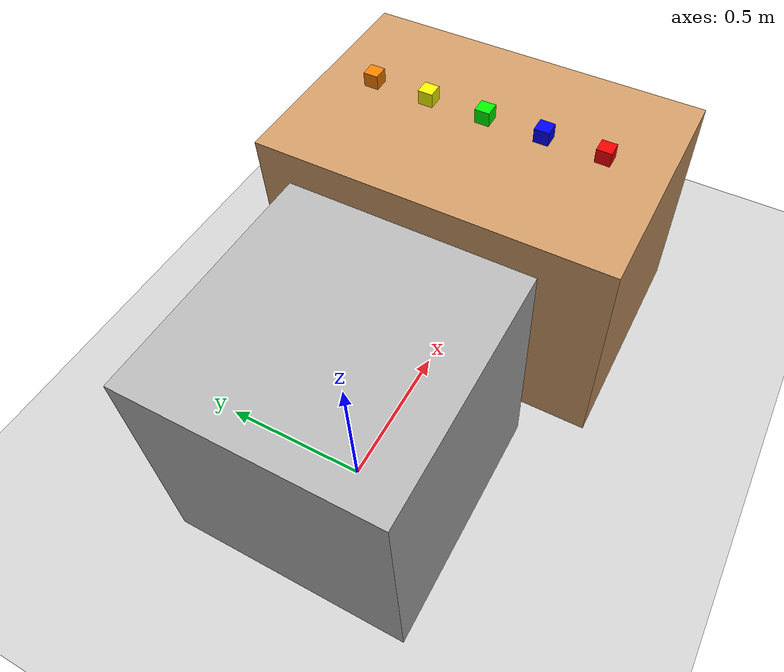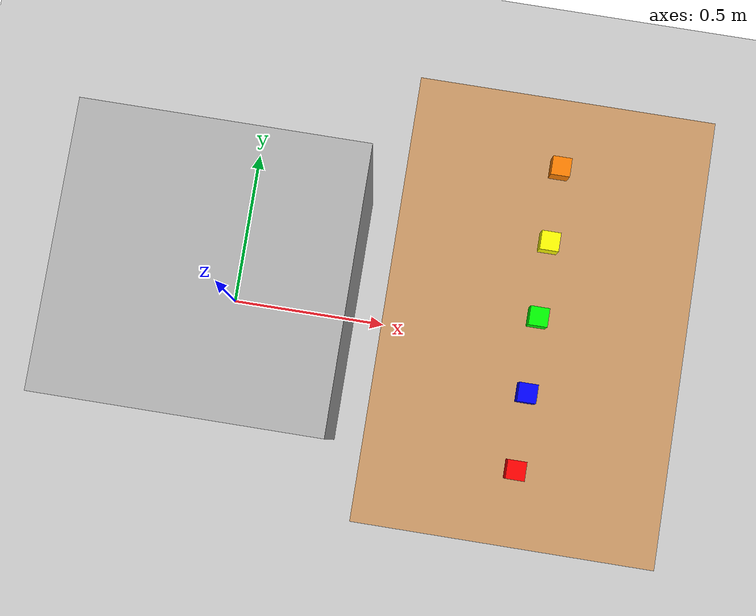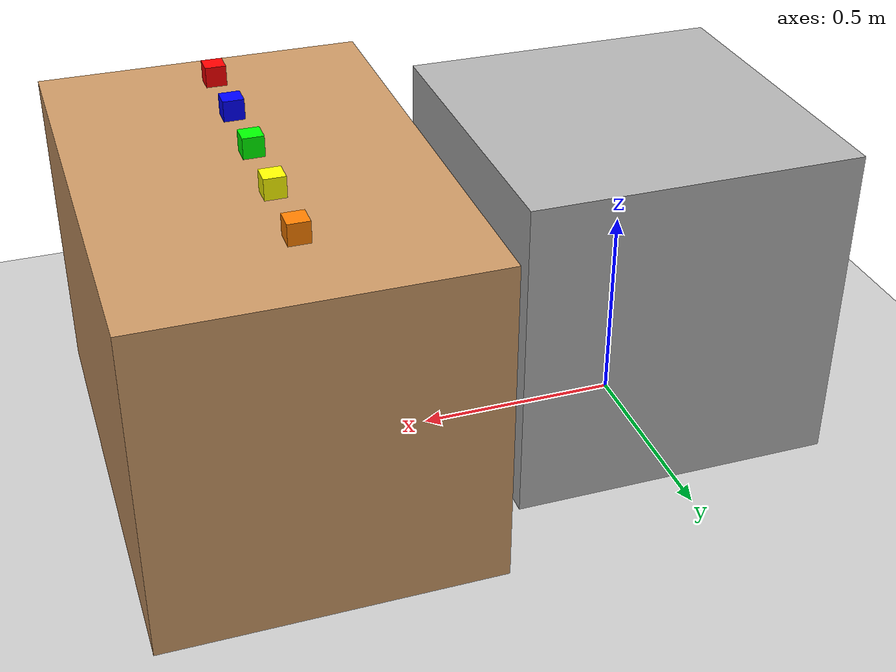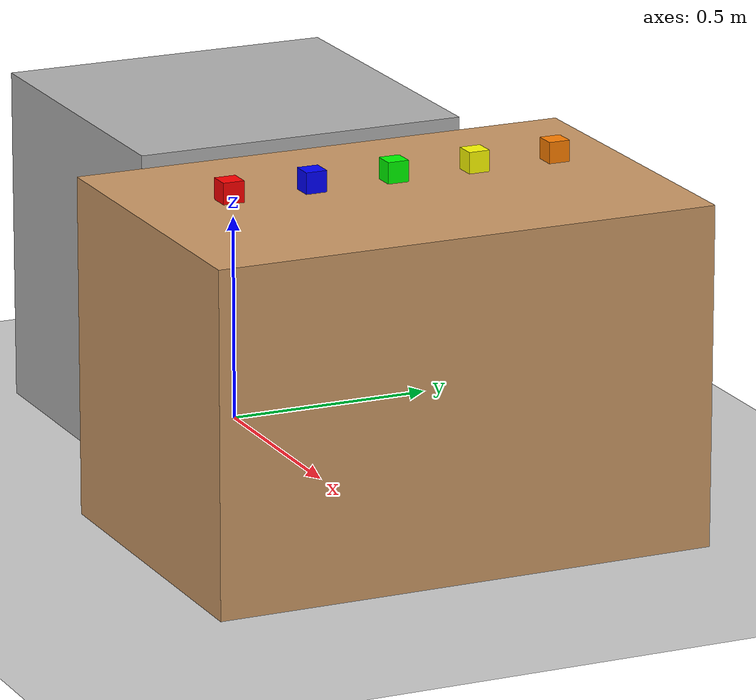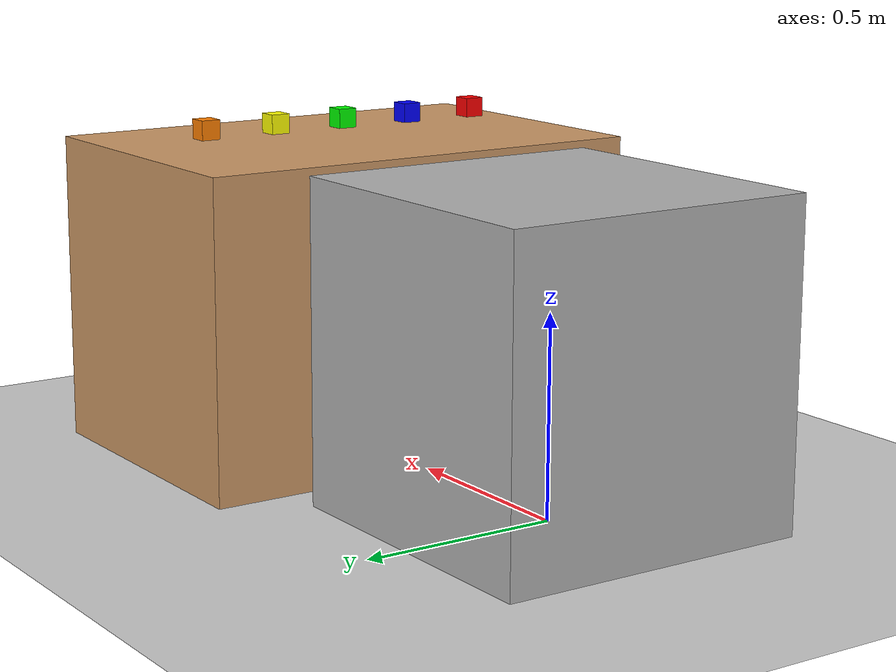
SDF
<?xml version="1.0" ?>
<sdf version="1.8">
  <world name="simple_workspace">

    <!-- Physics -->
    <physics name="1ms" type="ignored">
      <max_step_size>0.001</max_step_size>
      <real_time_factor>1.0</real_time_factor>
    </physics>

    <!-- Plugins -->
    <plugin filename="libignition-gazebo-physics-system.so" name="ignition::gazebo::systems::Physics">
    </plugin>
    <plugin filename="libignition-gazebo-user-commands-system.so" name="ignition::gazebo::systems::UserCommands">
    </plugin>
    <plugin filename="libignition-gazebo-scene-broadcaster-system.so" name="ignition::gazebo::systems::SceneBroadcaster">
    </plugin>

    <!-- Lighting -->
    <light type="directional" name="sun">
      <cast_shadows>true</cast_shadows>
      <pose>0 0 10 0 0 0</pose>
      <diffuse>0.8 0.8 0.8 1</diffuse>
      <specular>0.2 0.2 0.2 1</specular>
      <direction>-0.5 0.1 -0.9</direction>
    </light>

    <!-- Ground Plane -->
    <model name="ground_plane">
      <static>true</static>
      <link name="link">
        <collision name="collision">
          <geometry>
            <plane>
              <normal>0 0 1</normal>
            </plane>
          </geometry>
        </collision>
        <visual name="visual">
          <geometry>
            <plane>
              <normal>0 0 1</normal>
              <size>100 100</size>
            </plane>
          </geometry>
          <material>
            <ambient>0.8 0.8 0.8 1</ambient>
            <diffuse>0.8 0.8 0.8 1</diffuse>
          </material>
        </visual>
      </link>
    </model>

    <!-- Robot Table (robot spawns on top of this) -->
    <model name="robot_table">
      <pose>0 0 0.4 0 0 0</pose>
      <static>true</static>
      <link name="link">
        <collision name="collision">
          <geometry>
            <box>
              <size>0.8 0.8 0.8</size>
            </box>
          </geometry>
        </collision>
        <visual name="visual">
          <geometry>
            <box>
              <size>0.8 0.8 0.8</size>
            </box>
          </geometry>
          <material>
            <ambient>0.5 0.5 0.5 1</ambient>
            <diffuse>0.7 0.7 0.7 1</diffuse>
          </material>
        </visual>
      </link>
    </model>

    <!-- Work Table (for objects) -->
    <model name="work_table">
      <pose>0.9 0 0.4 0 0 0</pose>
      <static>true</static>
      <link name="link">
        <collision name="collision">
          <geometry>
            <box>
              <size>0.8 1.2 0.8</size>
            </box>
          </geometry>
        </collision>
        <visual name="visual">
          <geometry>
            <box>
              <size>0.8 1.2 0.8</size>
            </box>
          </geometry>
          <material>
            <ambient>0.6 0.4 0.2 1</ambient>
            <diffuse>0.8 0.6 0.4 1</diffuse>
          </material>
        </visual>
      </link>
    </model>

    <!-- Red Cube -->
    <model name="red_cube">
      <pose>0.9 -0.4 0.85 0 0 0</pose>
      <link name="link">
        <inertial>
          <mass>0.1</mass>
          <inertia>
            <ixx>0.000167</ixx>
            <iyy>0.000167</iyy>
            <izz>0.000167</izz>
          </inertia>
        </inertial>
        <collision name="collision">
          <geometry>
            <box>
              <size>0.05 0.05 0.05</size>
            </box>
          </geometry>
        </collision>
        <visual name="visual">
          <geometry>
            <box>
              <size>0.05 0.05 0.05</size>
            </box>
          </geometry>
          <material>
            <ambient>1 0 0 1</ambient>
            <diffuse>1 0 0 1</diffuse>
          </material>
        </visual>
      </link>
    </model>

    <!-- Blue Cube -->
    <model name="blue_cube">
      <pose>0.9 -0.2 0.85 0 0 0</pose>
      <link name="link">
        <inertial>
          <mass>0.1</mass>
          <inertia>
            <ixx>0.000167</ixx>
            <iyy>0.000167</iyy>
            <izz>0.000167</izz>
          </inertia>
        </inertial>
        <collision name="collision">
          <geometry>
            <box>
              <size>0.05 0.05 0.05</size>
            </box>
          </geometry>
        </collision>
        <visual name="visual">
          <geometry>
            <box>
              <size>0.05 0.05 0.05</size>
            </box>
          </geometry>
          <material>
            <ambient>0 0 1 1</ambient>
            <diffuse>0 0 1 1</diffuse>
          </material>
        </visual>
      </link>
    </model>

    <!-- Green Cube -->
    <model name="green_cube">
      <pose>0.9 0.0 0.85 0 0 0</pose>
      <link name="link">
        <inertial>
          <mass>0.1</mass>
          <inertia>
            <ixx>0.000167</ixx>
            <iyy>0.000167</iyy>
            <izz>0.000167</izz>
          </inertia>
        </inertial>
        <collision name="collision">
          <geometry>
            <box>
              <size>0.05 0.05 0.05</size>
            </box>
          </geometry>
        </collision>
        <visual name="visual">
          <geometry>
            <box>
              <size>0.05 0.05 0.05</size>
            </box>
          </geometry>
          <material>
            <ambient>0 1 0 1</ambient>
            <diffuse>0 1 0 1</diffuse>
          </material>
        </visual>
      </link>
    </model>

    <!-- Yellow Cube -->
    <model name="yellow_cube">
      <pose>0.9 0.2 0.85 0 0 0</pose>
      <link name="link">
        <inertial>
          <mass>0.1</mass>
          <inertia>
            <ixx>0.000167</ixx>
            <iyy>0.000167</iyy>
            <izz>0.000167</izz>
          </inertia>
        </inertial>
        <collision name="collision">
          <geometry>
            <box>
              <size>0.05 0.05 0.05</size>
            </box>
          </geometry>
        </collision>
        <visual name="visual">
          <geometry>
            <box>
              <size>0.05 0.05 0.05</size>
            </box>
          </geometry>
          <material>
            <ambient>1 1 0 1</ambient>
            <diffuse>1 1 0 1</diffuse>
          </material>
        </visual>
      </link>
    </model>

    <!-- Orange Cube -->
    <model name="orange_cube">
      <pose>0.9 0.4 0.85 0 0 0</pose>
      <link name="link">
        <inertial>
          <mass>0.1</mass>
          <inertia>
            <ixx>0.000167</ixx>
            <iyy>0.000167</iyy>
            <izz>0.000167</izz>
          </inertia>
        </inertial>
        <collision name="collision">
          <geometry>
            <box>
              <size>0.05 0.05 0.05</size>
            </box>
          </geometry>
        </collision>
        <visual name="visual">
          <geometry>
            <box>
              <size>0.05 0.05 0.05</size>
            </box>
          </geometry>
          <material>
            <ambient>1 0.5 0 1</ambient>
            <diffuse>1 0.5 0 1</diffuse>
          </material>
        </visual>
      </link>
    </model>

  </world>
</sdf>
